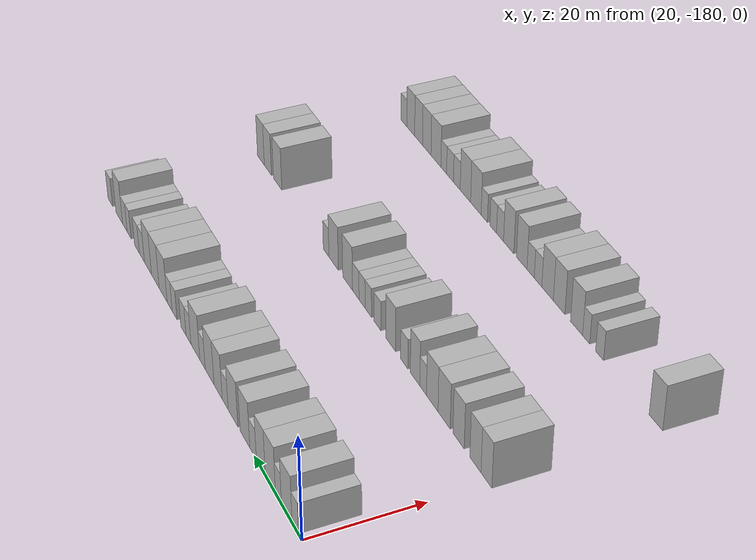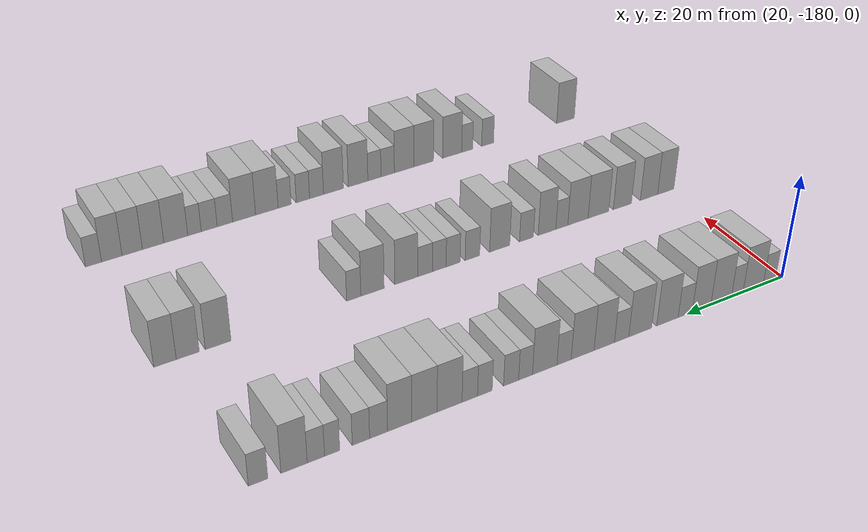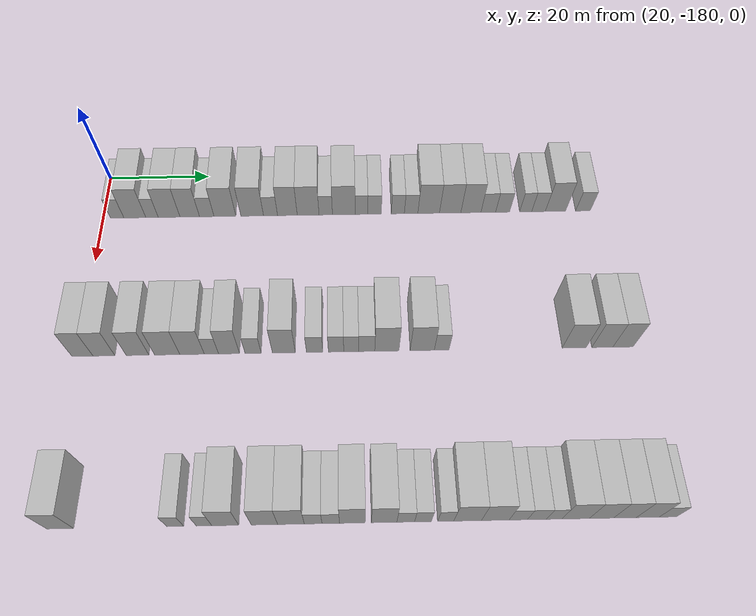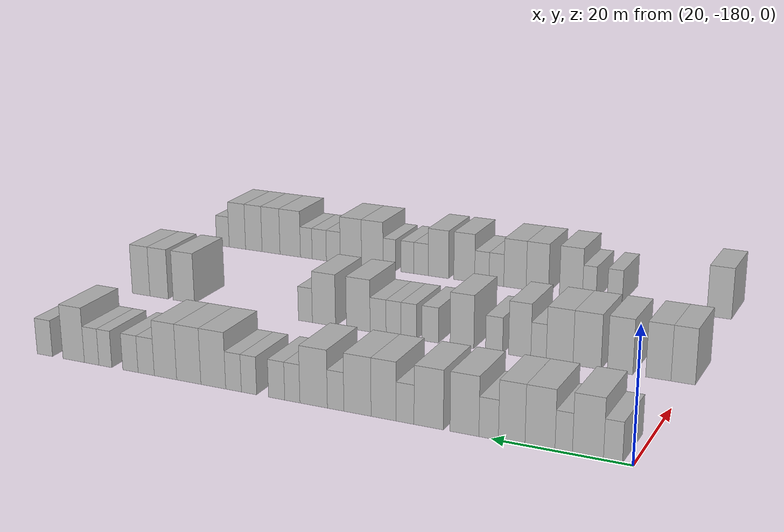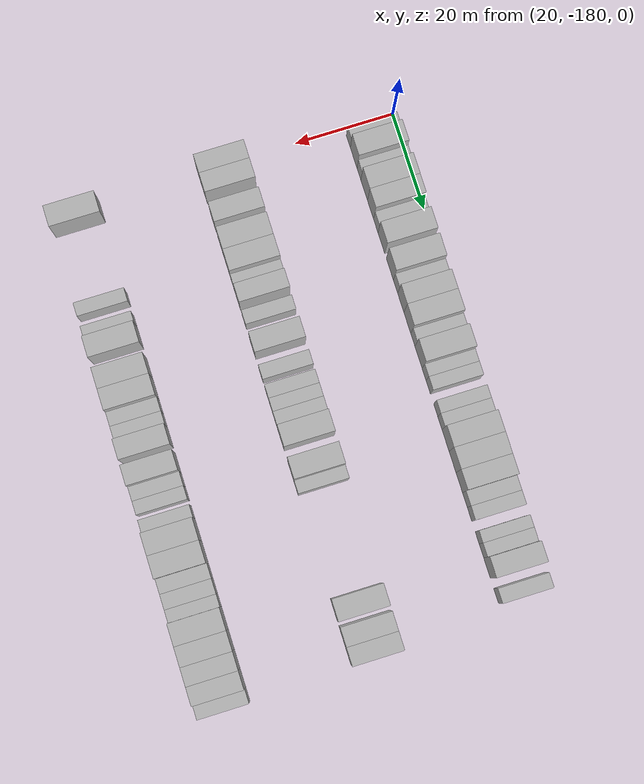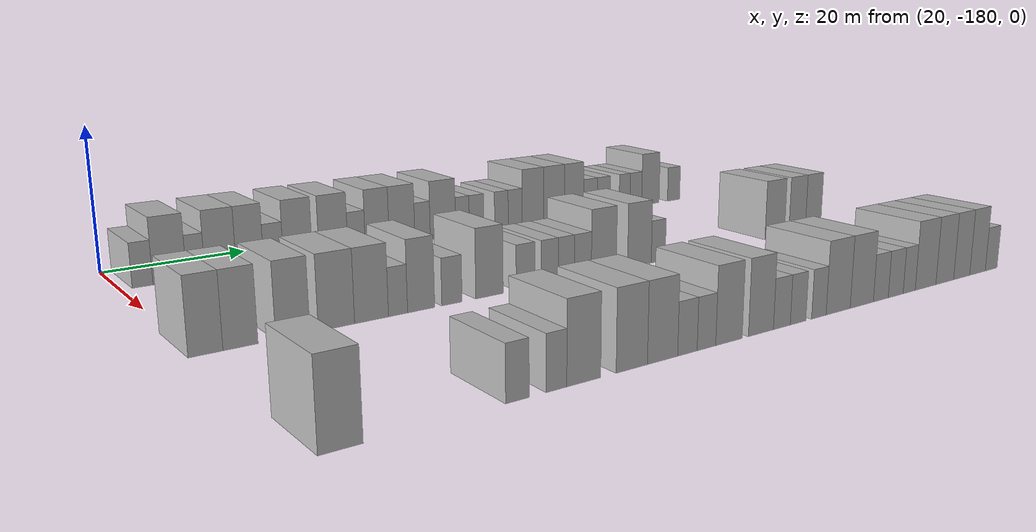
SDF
<sdf version="1.6">
 <world name="default">
  <model name="building_27">
   <static>1</static>
   <pose>25.0000 -177.2383 0 0.000000 0.000000 0.000000</pose>
   <link name="link">
    <pose>0 0 3.00 0 0 0</pose>
    <collision name="collision"><geometry><box><size>10.0000 2.6254 6.0000</size></box></geometry></collision>
    <visual name="visual">
     <cast_shadows>0</cast_shadows>
     <geometry><box><size>10.0000 2.6254 6.0000</size></box></geometry>
     <material>
      <script>
       <uri>model://HANNAS_wall/materials/scripts</uri>
       <uri>model://HANNAS_wall/materials/textures</uri>
       <name>vrc/HANNAS_wall</name>
      </script>
     </material>
    </visual>
   </link>
  </model>
  <model name="building_28">
   <static>1</static>
   <pose>25.0000 -173.7595 0 0.000000 0.000000 0.000000</pose>
   <link name="link">
    <pose>0 0 4.50 0 0 0</pose>
    <collision name="collision"><geometry><box><size>10.0000 4.3323 9.0000</size></box></geometry></collision>
    <visual name="visual">
     <cast_shadows>0</cast_shadows>
     <geometry><box><size>10.0000 4.3323 9.0000</size></box></geometry>
     <material>
      <script>
       <uri>model://HANNAS_wall/materials/scripts</uri>
       <uri>model://HANNAS_wall/materials/textures</uri>
       <name>vrc/HANNAS_wall</name>
      </script>
     </material>
    </visual>
   </link>
  </model>
  <model name="building_29">
   <static>1</static>
   <pose>25.0000 -170.3641 0 0.000000 0.000000 0.000000</pose>
   <link name="link">
    <pose>0 0 3.00 0 0 0</pose>
    <collision name="collision"><geometry><box><size>10.0000 2.4583 6.0000</size></box></geometry></collision>
    <visual name="visual">
     <cast_shadows>0</cast_shadows>
     <geometry><box><size>10.0000 2.4583 6.0000</size></box></geometry>
     <material>
      <script>
       <uri>model://HANNAS_wall/materials/scripts</uri>
       <uri>model://HANNAS_wall/materials/textures</uri>
       <name>vrc/HANNAS_wall</name>
      </script>
     </material>
    </visual>
   </link>
  </model>
  <model name="building_30">
   <static>1</static>
   <pose>25.0000 -166.9870 0 0.000000 0.000000 0.000000</pose>
   <link name="link">
    <pose>0 0 4.50 0 0 0</pose>
    <collision name="collision"><geometry><box><size>10.0000 4.2960 9.0000</size></box></geometry></collision>
    <visual name="visual">
     <cast_shadows>0</cast_shadows>
     <geometry><box><size>10.0000 4.2960 9.0000</size></box></geometry>
     <material>
      <script>
       <uri>model://HANNAS_wall/materials/scripts</uri>
       <uri>model://HANNAS_wall/materials/textures</uri>
       <name>vrc/HANNAS_wall</name>
      </script>
     </material>
    </visual>
   </link>
  </model>
  <model name="building_31">
   <static>1</static>
   <pose>25.0000 -162.9096 0 0.000000 0.000000 0.000000</pose>
   <link name="link">
    <pose>0 0 4.50 0 0 0</pose>
    <collision name="collision"><geometry><box><size>10.0000 3.8586 9.0000</size></box></geometry></collision>
    <visual name="visual">
     <cast_shadows>0</cast_shadows>
     <geometry><box><size>10.0000 3.8586 9.0000</size></box></geometry>
     <material>
      <script>
       <uri>model://HANNAS_wall/materials/scripts</uri>
       <uri>model://HANNAS_wall/materials/textures</uri>
       <name>vrc/HANNAS_wall</name>
      </script>
     </material>
    </visual>
   </link>
  </model>
  <model name="building_32">
   <static>1</static>
   <pose>25.0000 -159.5487 0 0.000000 0.000000 0.000000</pose>
   <link name="link">
    <pose>0 0 3.00 0 0 0</pose>
    <collision name="collision"><geometry><box><size>10.0000 2.8632 6.0000</size></box></geometry></collision>
    <visual name="visual">
     <cast_shadows>0</cast_shadows>
     <geometry><box><size>10.0000 2.8632 6.0000</size></box></geometry>
     <material>
      <script>
       <uri>model://HANNAS_wall/materials/scripts</uri>
       <uri>model://HANNAS_wall/materials/textures</uri>
       <name>vrc/HANNAS_wall</name>
      </script>
     </material>
    </visual>
   </link>
  </model>
  <model name="building_33">
   <static>1</static>
   <pose>25.0000 -155.9598 0 0.000000 0.000000 0.000000</pose>
   <link name="link">
    <pose>0 0 4.50 0 0 0</pose>
    <collision name="collision"><geometry><box><size>10.0000 4.3147 9.0000</size></box></geometry></collision>
    <visual name="visual">
     <cast_shadows>0</cast_shadows>
     <geometry><box><size>10.0000 4.3147 9.0000</size></box></geometry>
     <material>
      <script>
       <uri>model://HANNAS_wall/materials/scripts</uri>
       <uri>model://HANNAS_wall/materials/textures</uri>
       <name>vrc/HANNAS_wall</name>
      </script>
     </material>
    </visual>
   </link>
  </model>
  <model name="building_34">
   <static>1</static>
   <pose>25.0000 -150.5635 0 0.000000 0.000000 0.000000</pose>
   <link name="link">
    <pose>0 0 4.50 0 0 0</pose>
    <collision name="collision"><geometry><box><size>10.0000 4.4778 9.0000</size></box></geometry></collision>
    <visual name="visual">
     <cast_shadows>0</cast_shadows>
     <geometry><box><size>10.0000 4.4778 9.0000</size></box></geometry>
     <material>
      <script>
       <uri>model://HANNAS_wall/materials/scripts</uri>
       <uri>model://HANNAS_wall/materials/textures</uri>
       <name>vrc/HANNAS_wall</name>
      </script>
     </material>
    </visual>
   </link>
  </model>
  <model name="building_35">
   <static>1</static>
   <pose>25.0000 -146.9342 0 0.000000 0.000000 0.000000</pose>
   <link name="link">
    <pose>0 0 3.00 0 0 0</pose>
    <collision name="collision"><geometry><box><size>10.0000 2.7808 6.0000</size></box></geometry></collision>
    <visual name="visual">
     <cast_shadows>0</cast_shadows>
     <geometry><box><size>10.0000 2.7808 6.0000</size></box></geometry>
     <material>
      <script>
       <uri>model://HANNAS_wall/materials/scripts</uri>
       <uri>model://HANNAS_wall/materials/textures</uri>
       <name>vrc/HANNAS_wall</name>
      </script>
     </material>
    </visual>
   </link>
  </model>
  <model name="building_36">
   <static>1</static>
   <pose>25.0000 -143.5945 0 0.000000 0.000000 0.000000</pose>
   <link name="link">
    <pose>0 0 4.50 0 0 0</pose>
    <collision name="collision"><geometry><box><size>10.0000 3.8986 9.0000</size></box></geometry></collision>
    <visual name="visual">
     <cast_shadows>0</cast_shadows>
     <geometry><box><size>10.0000 3.8986 9.0000</size></box></geometry>
     <material>
      <script>
       <uri>model://HANNAS_wall/materials/scripts</uri>
       <uri>model://HANNAS_wall/materials/textures</uri>
       <name>vrc/HANNAS_wall</name>
      </script>
     </material>
    </visual>
   </link>
  </model>
  <model name="building_37">
   <static>1</static>
   <pose>25.0000 -139.4871 0 0.000000 0.000000 0.000000</pose>
   <link name="link">
    <pose>0 0 4.50 0 0 0</pose>
    <collision name="collision"><geometry><box><size>10.0000 4.3162 9.0000</size></box></geometry></collision>
    <visual name="visual">
     <cast_shadows>0</cast_shadows>
     <geometry><box><size>10.0000 4.3162 9.0000</size></box></geometry>
     <material>
      <script>
       <uri>model://HANNAS_wall/materials/scripts</uri>
       <uri>model://HANNAS_wall/materials/textures</uri>
       <name>vrc/HANNAS_wall</name>
      </script>
     </material>
    </visual>
   </link>
  </model>
  <model name="building_38">
   <static>1</static>
   <pose>25.0000 -136.0011 0 0.000000 0.000000 0.000000</pose>
   <link name="link">
    <pose>0 0 3.00 0 0 0</pose>
    <collision name="collision"><geometry><box><size>10.0000 2.6557 6.0000</size></box></geometry></collision>
    <visual name="visual">
     <cast_shadows>0</cast_shadows>
     <geometry><box><size>10.0000 2.6557 6.0000</size></box></geometry>
     <material>
      <script>
       <uri>model://HANNAS_wall/materials/scripts</uri>
       <uri>model://HANNAS_wall/materials/textures</uri>
       <name>vrc/HANNAS_wall</name>
      </script>
     </material>
    </visual>
   </link>
  </model>
  <model name="building_39">
   <static>1</static>
   <pose>25.0000 -132.4320 0 0.000000 0.000000 0.000000</pose>
   <link name="link">
    <pose>0 0 4.50 0 0 0</pose>
    <collision name="collision"><geometry><box><size>10.0000 4.4825 9.0000</size></box></geometry></collision>
    <visual name="visual">
     <cast_shadows>0</cast_shadows>
     <geometry><box><size>10.0000 4.4825 9.0000</size></box></geometry>
     <material>
      <script>
       <uri>model://HANNAS_wall/materials/scripts</uri>
       <uri>model://HANNAS_wall/materials/textures</uri>
       <name>vrc/HANNAS_wall</name>
      </script>
     </material>
    </visual>
   </link>
  </model>
  <model name="building_40">
   <static>1</static>
   <pose>25.0000 -128.9391 0 0.000000 0.000000 0.000000</pose>
   <link name="link">
    <pose>0 0 3.00 0 0 0</pose>
    <collision name="collision"><geometry><box><size>10.0000 2.5035 6.0000</size></box></geometry></collision>
    <visual name="visual">
     <cast_shadows>0</cast_shadows>
     <geometry><box><size>10.0000 2.5035 6.0000</size></box></geometry>
     <material>
      <script>
       <uri>model://HANNAS_wall/materials/scripts</uri>
       <uri>model://HANNAS_wall/materials/textures</uri>
       <name>vrc/HANNAS_wall</name>
      </script>
     </material>
    </visual>
   </link>
  </model>
  <model name="building_41">
   <static>1</static>
   <pose>25.0000 -126.3406 0 0.000000 0.000000 0.000000</pose>
   <link name="link">
    <pose>0 0 3.00 0 0 0</pose>
    <collision name="collision"><geometry><box><size>10.0000 2.6935 6.0000</size></box></geometry></collision>
    <visual name="visual">
     <cast_shadows>0</cast_shadows>
     <geometry><box><size>10.0000 2.6935 6.0000</size></box></geometry>
     <material>
      <script>
       <uri>model://HANNAS_wall/materials/scripts</uri>
       <uri>model://HANNAS_wall/materials/textures</uri>
       <name>vrc/HANNAS_wall</name>
      </script>
     </material>
    </visual>
   </link>
  </model>
  <model name="building_42">
   <static>1</static>
   <pose>25.0000 -121.6999 0 0.000000 0.000000 0.000000</pose>
   <link name="link">
    <pose>0 0 3.00 0 0 0</pose>
    <collision name="collision"><geometry><box><size>10.0000 2.5879 6.0000</size></box></geometry></collision>
    <visual name="visual">
     <cast_shadows>0</cast_shadows>
     <geometry><box><size>10.0000 2.5879 6.0000</size></box></geometry>
     <material>
      <script>
       <uri>model://HANNAS_wall/materials/scripts</uri>
       <uri>model://HANNAS_wall/materials/textures</uri>
       <name>vrc/HANNAS_wall</name>
      </script>
     </material>
    </visual>
   </link>
  </model>
  <model name="building_43">
   <static>1</static>
   <pose>25.0000 -119.0641 0 0.000000 0.000000 0.000000</pose>
   <link name="link">
    <pose>0 0 3.00 0 0 0</pose>
    <collision name="collision"><geometry><box><size>10.0000 2.6836 6.0000</size></box></geometry></collision>
    <visual name="visual">
     <cast_shadows>0</cast_shadows>
     <geometry><box><size>10.0000 2.6836 6.0000</size></box></geometry>
     <material>
      <script>
       <uri>model://HANNAS_wall/materials/scripts</uri>
       <uri>model://HANNAS_wall/materials/textures</uri>
       <name>vrc/HANNAS_wall</name>
      </script>
     </material>
    </visual>
   </link>
  </model>
  <model name="building_44">
   <static>1</static>
   <pose>25.0000 -115.5744 0 0.000000 0.000000 0.000000</pose>
   <link name="link">
    <pose>0 0 4.50 0 0 0</pose>
    <collision name="collision"><geometry><box><size>10.0000 4.2958 9.0000</size></box></geometry></collision>
    <visual name="visual">
     <cast_shadows>0</cast_shadows>
     <geometry><box><size>10.0000 4.2958 9.0000</size></box></geometry>
     <material>
      <script>
       <uri>model://HANNAS_wall/materials/scripts</uri>
       <uri>model://HANNAS_wall/materials/textures</uri>
       <name>vrc/HANNAS_wall</name>
      </script>
     </material>
    </visual>
   </link>
  </model>
  <model name="building_45">
   <static>1</static>
   <pose>25.0000 -111.2972 0 0.000000 0.000000 0.000000</pose>
   <link name="link">
    <pose>0 0 4.50 0 0 0</pose>
    <collision name="collision"><geometry><box><size>10.0000 4.2586 9.0000</size></box></geometry></collision>
    <visual name="visual">
     <cast_shadows>0</cast_shadows>
     <geometry><box><size>10.0000 4.2586 9.0000</size></box></geometry>
     <material>
      <script>
       <uri>model://HANNAS_wall/materials/scripts</uri>
       <uri>model://HANNAS_wall/materials/textures</uri>
       <name>vrc/HANNAS_wall</name>
      </script>
     </material>
    </visual>
   </link>
  </model>
  <model name="building_46">
   <static>1</static>
   <pose>25.0000 -107.1710 0 0.000000 0.000000 0.000000</pose>
   <link name="link">
    <pose>0 0 4.50 0 0 0</pose>
    <collision name="collision"><geometry><box><size>10.0000 3.9936 9.0000</size></box></geometry></collision>
    <visual name="visual">
     <cast_shadows>0</cast_shadows>
     <geometry><box><size>10.0000 3.9936 9.0000</size></box></geometry>
     <material>
      <script>
       <uri>model://HANNAS_wall/materials/scripts</uri>
       <uri>model://HANNAS_wall/materials/textures</uri>
       <name>vrc/HANNAS_wall</name>
      </script>
     </material>
    </visual>
   </link>
  </model>
  <model name="building_47">
   <static>1</static>
   <pose>25.0000 -103.7107 0 0.000000 0.000000 0.000000</pose>
   <link name="link">
    <pose>0 0 3.00 0 0 0</pose>
    <collision name="collision"><geometry><box><size>10.0000 2.9270 6.0000</size></box></geometry></collision>
    <visual name="visual">
     <cast_shadows>0</cast_shadows>
     <geometry><box><size>10.0000 2.9270 6.0000</size></box></geometry>
     <material>
      <script>
       <uri>model://HANNAS_wall/materials/scripts</uri>
       <uri>model://HANNAS_wall/materials/textures</uri>
       <name>vrc/HANNAS_wall</name>
      </script>
     </material>
    </visual>
   </link>
  </model>
  <model name="building_48">
   <static>1</static>
   <pose>25.0000 -100.8520 0 0.000000 0.000000 0.000000</pose>
   <link name="link">
    <pose>0 0 3.00 0 0 0</pose>
    <collision name="collision"><geometry><box><size>10.0000 2.7905 6.0000</size></box></geometry></collision>
    <visual name="visual">
     <cast_shadows>0</cast_shadows>
     <geometry><box><size>10.0000 2.7905 6.0000</size></box></geometry>
     <material>
      <script>
       <uri>model://HANNAS_wall/materials/scripts</uri>
       <uri>model://HANNAS_wall/materials/textures</uri>
       <name>vrc/HANNAS_wall</name>
      </script>
     </material>
    </visual>
   </link>
  </model>
  <model name="building_49">
   <static>1</static>
   <pose>25.0000 -96.2562 0 0.000000 0.000000 0.000000</pose>
   <link name="link">
    <pose>0 0 3.00 0 0 0</pose>
    <collision name="collision"><geometry><box><size>10.0000 2.4011 6.0000</size></box></geometry></collision>
    <visual name="visual">
     <cast_shadows>0</cast_shadows>
     <geometry><box><size>10.0000 2.4011 6.0000</size></box></geometry>
     <material>
      <script>
       <uri>model://HANNAS_wall/materials/scripts</uri>
       <uri>model://HANNAS_wall/materials/textures</uri>
       <name>vrc/HANNAS_wall</name>
      </script>
     </material>
    </visual>
   </link>
  </model>
  <model name="building_50">
   <static>1</static>
   <pose>25.0000 -93.7037 0 0.000000 0.000000 0.000000</pose>
   <link name="link">
    <pose>0 0 3.00 0 0 0</pose>
    <collision name="collision"><geometry><box><size>10.0000 2.7040 6.0000</size></box></geometry></collision>
    <visual name="visual">
     <cast_shadows>0</cast_shadows>
     <geometry><box><size>10.0000 2.7040 6.0000</size></box></geometry>
     <material>
      <script>
       <uri>model://HANNAS_wall/materials/scripts</uri>
       <uri>model://HANNAS_wall/materials/textures</uri>
       <name>vrc/HANNAS_wall</name>
      </script>
     </material>
    </visual>
   </link>
  </model>
  <model name="building_51">
   <static>1</static>
   <pose>25.0000 -90.3258 0 0.000000 0.000000 0.000000</pose>
   <link name="link">
    <pose>0 0 4.50 0 0 0</pose>
    <collision name="collision"><geometry><box><size>10.0000 4.0517 9.0000</size></box></geometry></collision>
    <visual name="visual">
     <cast_shadows>0</cast_shadows>
     <geometry><box><size>10.0000 4.0517 9.0000</size></box></geometry>
     <material>
      <script>
       <uri>model://HANNAS_wall/materials/scripts</uri>
       <uri>model://HANNAS_wall/materials/textures</uri>
       <name>vrc/HANNAS_wall</name>
      </script>
     </material>
    </visual>
   </link>
  </model>
  <model name="building_52">
   <static>1</static>
   <pose>25.0000 -84.8335 0 0.000000 0.000000 0.000000</pose>
   <link name="link">
    <pose>0 0 3.00 0 0 0</pose>
    <collision name="collision"><geometry><box><size>10.0000 2.9329 6.0000</size></box></geometry></collision>
    <visual name="visual">
     <cast_shadows>0</cast_shadows>
     <geometry><box><size>10.0000 2.9329 6.0000</size></box></geometry>
     <material>
      <script>
       <uri>model://HANNAS_wall/materials/scripts</uri>
       <uri>model://HANNAS_wall/materials/textures</uri>
       <name>vrc/HANNAS_wall</name>
      </script>
     </material>
    </visual>
   </link>
  </model>
  <model name="building_162">
   <static>1</static>
   <pose>55.0000 -179.2265 0 0.000000 0.000000 0.000000</pose>
   <link name="link">
    <pose>0 0 4.50 0 0 0</pose>
    <collision name="collision"><geometry><box><size>10.0000 3.7395 9.0000</size></box></geometry></collision>
    <visual name="visual">
     <cast_shadows>0</cast_shadows>
     <geometry><box><size>10.0000 3.7395 9.0000</size></box></geometry>
     <material>
      <script>
       <uri>model://HANNAS_wall/materials/scripts</uri>
       <uri>model://HANNAS_wall/materials/textures</uri>
       <name>vrc/HANNAS_wall</name>
      </script>
     </material>
    </visual>
   </link>
  </model>
  <model name="building_163">
   <static>1</static>
   <pose>55.0000 -175.4091 0 0.000000 0.000000 0.000000</pose>
   <link name="link">
    <pose>0 0 4.50 0 0 0</pose>
    <collision name="collision"><geometry><box><size>10.0000 3.8953 9.0000</size></box></geometry></collision>
    <visual name="visual">
     <cast_shadows>0</cast_shadows>
     <geometry><box><size>10.0000 3.8953 9.0000</size></box></geometry>
     <material>
      <script>
       <uri>model://HANNAS_wall/materials/scripts</uri>
       <uri>model://HANNAS_wall/materials/textures</uri>
       <name>vrc/HANNAS_wall</name>
      </script>
     </material>
    </visual>
   </link>
  </model>
  <model name="building_164">
   <static>1</static>
   <pose>55.0000 -169.4445 0 0.000000 0.000000 0.000000</pose>
   <link name="link">
    <pose>0 0 4.50 0 0 0</pose>
    <collision name="collision"><geometry><box><size>10.0000 4.0338 9.0000</size></box></geometry></collision>
    <visual name="visual">
     <cast_shadows>0</cast_shadows>
     <geometry><box><size>10.0000 4.0338 9.0000</size></box></geometry>
     <material>
      <script>
       <uri>model://HANNAS_wall/materials/scripts</uri>
       <uri>model://HANNAS_wall/materials/textures</uri>
       <name>vrc/HANNAS_wall</name>
      </script>
     </material>
    </visual>
   </link>
  </model>
  <model name="building_165">
   <static>1</static>
   <pose>55.0000 -164.1778 0 0.000000 0.000000 0.000000</pose>
   <link name="link">
    <pose>0 0 4.50 0 0 0</pose>
    <collision name="collision"><geometry><box><size>10.0000 4.4997 9.0000</size></box></geometry></collision>
    <visual name="visual">
     <cast_shadows>0</cast_shadows>
     <geometry><box><size>10.0000 4.4997 9.0000</size></box></geometry>
     <material>
      <script>
       <uri>model://HANNAS_wall/materials/scripts</uri>
       <uri>model://HANNAS_wall/materials/textures</uri>
       <name>vrc/HANNAS_wall</name>
      </script>
     </material>
    </visual>
   </link>
  </model>
  <model name="building_166">
   <static>1</static>
   <pose>55.0000 -159.7492 0 0.000000 0.000000 0.000000</pose>
   <link name="link">
    <pose>0 0 4.50 0 0 0</pose>
    <collision name="collision"><geometry><box><size>10.0000 4.3576 9.0000</size></box></geometry></collision>
    <visual name="visual">
     <cast_shadows>0</cast_shadows>
     <geometry><box><size>10.0000 4.3576 9.0000</size></box></geometry>
     <material>
      <script>
       <uri>model://HANNAS_wall/materials/scripts</uri>
       <uri>model://HANNAS_wall/materials/textures</uri>
       <name>vrc/HANNAS_wall</name>
      </script>
     </material>
    </visual>
   </link>
  </model>
  <model name="building_167">
   <static>1</static>
   <pose>55.0000 -156.2999 0 0.000000 0.000000 0.000000</pose>
   <link name="link">
    <pose>0 0 3.00 0 0 0</pose>
    <collision name="collision"><geometry><box><size>10.0000 2.5411 6.0000</size></box></geometry></collision>
    <visual name="visual">
     <cast_shadows>0</cast_shadows>
     <geometry><box><size>10.0000 2.5411 6.0000</size></box></geometry>
     <material>
      <script>
       <uri>model://HANNAS_wall/materials/scripts</uri>
       <uri>model://HANNAS_wall/materials/textures</uri>
       <name>vrc/HANNAS_wall</name>
      </script>
     </material>
    </visual>
   </link>
  </model>
  <model name="building_168">
   <static>1</static>
   <pose>55.0000 -153.1738 0 0.000000 0.000000 0.000000</pose>
   <link name="link">
    <pose>0 0 4.50 0 0 0</pose>
    <collision name="collision"><geometry><box><size>10.0000 3.7110 9.0000</size></box></geometry></collision>
    <visual name="visual">
     <cast_shadows>0</cast_shadows>
     <geometry><box><size>10.0000 3.7110 9.0000</size></box></geometry>
     <material>
      <script>
       <uri>model://HANNAS_wall/materials/scripts</uri>
       <uri>model://HANNAS_wall/materials/textures</uri>
       <name>vrc/HANNAS_wall</name>
      </script>
     </material>
    </visual>
   </link>
  </model>
  <model name="building_169">
   <static>1</static>
   <pose>55.0000 -148.8820 0 0.000000 0.000000 0.000000</pose>
   <link name="link">
    <pose>0 0 3.00 0 0 0</pose>
    <collision name="collision"><geometry><box><size>10.0000 2.8727 6.0000</size></box></geometry></collision>
    <visual name="visual">
     <cast_shadows>0</cast_shadows>
     <geometry><box><size>10.0000 2.8727 6.0000</size></box></geometry>
     <material>
      <script>
       <uri>model://HANNAS_wall/materials/scripts</uri>
       <uri>model://HANNAS_wall/materials/textures</uri>
       <name>vrc/HANNAS_wall</name>
      </script>
     </material>
    </visual>
   </link>
  </model>
  <model name="building_170">
   <static>1</static>
   <pose>55.0000 -143.4073 0 0.000000 0.000000 0.000000</pose>
   <link name="link">
    <pose>0 0 4.50 0 0 0</pose>
    <collision name="collision"><geometry><box><size>10.0000 4.0767 9.0000</size></box></geometry></collision>
    <visual name="visual">
     <cast_shadows>0</cast_shadows>
     <geometry><box><size>10.0000 4.0767 9.0000</size></box></geometry>
     <material>
      <script>
       <uri>model://HANNAS_wall/materials/scripts</uri>
       <uri>model://HANNAS_wall/materials/textures</uri>
       <name>vrc/HANNAS_wall</name>
      </script>
     </material>
    </visual>
   </link>
  </model>
  <model name="building_171">
   <static>1</static>
   <pose>55.0000 -137.9137 0 0.000000 0.000000 0.000000</pose>
   <link name="link">
    <pose>0 0 3.00 0 0 0</pose>
    <collision name="collision"><geometry><box><size>10.0000 2.9103 6.0000</size></box></geometry></collision>
    <visual name="visual">
     <cast_shadows>0</cast_shadows>
     <geometry><box><size>10.0000 2.9103 6.0000</size></box></geometry>
     <material>
      <script>
       <uri>model://HANNAS_wall/materials/scripts</uri>
       <uri>model://HANNAS_wall/materials/textures</uri>
       <name>vrc/HANNAS_wall</name>
      </script>
     </material>
    </visual>
   </link>
  </model>
  <model name="building_172">
   <static>1</static>
   <pose>55.0000 -134.0903 0 0.000000 0.000000 0.000000</pose>
   <link name="link">
    <pose>0 0 3.00 0 0 0</pose>
    <collision name="collision"><geometry><box><size>10.0000 2.7366 6.0000</size></box></geometry></collision>
    <visual name="visual">
     <cast_shadows>0</cast_shadows>
     <geometry><box><size>10.0000 2.7366 6.0000</size></box></geometry>
     <material>
      <script>
       <uri>model://HANNAS_wall/materials/scripts</uri>
       <uri>model://HANNAS_wall/materials/textures</uri>
       <name>vrc/HANNAS_wall</name>
      </script>
     </material>
    </visual>
   </link>
  </model>
  <model name="building_173">
   <static>1</static>
   <pose>55.0000 -131.3996 0 0.000000 0.000000 0.000000</pose>
   <link name="link">
    <pose>0 0 3.00 0 0 0</pose>
    <collision name="collision"><geometry><box><size>10.0000 2.6448 6.0000</size></box></geometry></collision>
    <visual name="visual">
     <cast_shadows>0</cast_shadows>
     <geometry><box><size>10.0000 2.6448 6.0000</size></box></geometry>
     <material>
      <script>
       <uri>model://HANNAS_wall/materials/scripts</uri>
       <uri>model://HANNAS_wall/materials/textures</uri>
       <name>vrc/HANNAS_wall</name>
      </script>
     </material>
    </visual>
   </link>
  </model>
  <model name="building_174">
   <static>1</static>
   <pose>55.0000 -128.6348 0 0.000000 0.000000 0.000000</pose>
   <link name="link">
    <pose>0 0 3.00 0 0 0</pose>
    <collision name="collision"><geometry><box><size>10.0000 2.8849 6.0000</size></box></geometry></collision>
    <visual name="visual">
     <cast_shadows>0</cast_shadows>
     <geometry><box><size>10.0000 2.8849 6.0000</size></box></geometry>
     <material>
      <script>
       <uri>model://HANNAS_wall/materials/scripts</uri>
       <uri>model://HANNAS_wall/materials/textures</uri>
       <name>vrc/HANNAS_wall</name>
      </script>
     </material>
    </visual>
   </link>
  </model>
  <model name="building_175">
   <static>1</static>
   <pose>55.0000 -125.0281 0 0.000000 0.000000 0.000000</pose>
   <link name="link">
    <pose>0 0 4.50 0 0 0</pose>
    <collision name="collision"><geometry><box><size>10.0000 4.3284 9.0000</size></box></geometry></collision>
    <visual name="visual">
     <cast_shadows>0</cast_shadows>
     <geometry><box><size>10.0000 4.3284 9.0000</size></box></geometry>
     <material>
      <script>
       <uri>model://HANNAS_wall/materials/scripts</uri>
       <uri>model://HANNAS_wall/materials/textures</uri>
       <name>vrc/HANNAS_wall</name>
      </script>
     </material>
    </visual>
   </link>
  </model>
  <model name="building_176">
   <static>1</static>
   <pose>55.0000 -118.7055 0 0.000000 0.000000 0.000000</pose>
   <link name="link">
    <pose>0 0 4.50 0 0 0</pose>
    <collision name="collision"><geometry><box><size>10.0000 4.3169 9.0000</size></box></geometry></collision>
    <visual name="visual">
     <cast_shadows>0</cast_shadows>
     <geometry><box><size>10.0000 4.3169 9.0000</size></box></geometry>
     <material>
      <script>
       <uri>model://HANNAS_wall/materials/scripts</uri>
       <uri>model://HANNAS_wall/materials/textures</uri>
       <name>vrc/HANNAS_wall</name>
      </script>
     </material>
    </visual>
   </link>
  </model>
  <model name="building_177">
   <static>1</static>
   <pose>55.0000 -115.2351 0 0.000000 0.000000 0.000000</pose>
   <link name="link">
    <pose>0 0 3.00 0 0 0</pose>
    <collision name="collision"><geometry><box><size>10.0000 2.6239 6.0000</size></box></geometry></collision>
    <visual name="visual">
     <cast_shadows>0</cast_shadows>
     <geometry><box><size>10.0000 2.6239 6.0000</size></box></geometry>
     <material>
      <script>
       <uri>model://HANNAS_wall/materials/scripts</uri>
       <uri>model://HANNAS_wall/materials/textures</uri>
       <name>vrc/HANNAS_wall</name>
      </script>
     </material>
    </visual>
   </link>
  </model>
  <model name="building_178">
   <static>1</static>
   <pose>55.0000 -91.4495 0 0.000000 0.000000 0.000000</pose>
   <link name="link">
    <pose>0 0 4.50 0 0 0</pose>
    <collision name="collision"><geometry><box><size>10.0000 4.3157 9.0000</size></box></geometry></collision>
    <visual name="visual">
     <cast_shadows>0</cast_shadows>
     <geometry><box><size>10.0000 4.3157 9.0000</size></box></geometry>
     <material>
      <script>
       <uri>model://HANNAS_wall/materials/scripts</uri>
       <uri>model://HANNAS_wall/materials/textures</uri>
       <name>vrc/HANNAS_wall</name>
      </script>
     </material>
    </visual>
   </link>
  </model>
  <model name="building_179">
   <static>1</static>
   <pose>55.0000 -86.3975 0 0.000000 0.000000 0.000000</pose>
   <link name="link">
    <pose>0 0 4.50 0 0 0</pose>
    <collision name="collision"><geometry><box><size>10.0000 3.7885 9.0000</size></box></geometry></collision>
    <visual name="visual">
     <cast_shadows>0</cast_shadows>
     <geometry><box><size>10.0000 3.7885 9.0000</size></box></geometry>
     <material>
      <script>
       <uri>model://HANNAS_wall/materials/scripts</uri>
       <uri>model://HANNAS_wall/materials/textures</uri>
       <name>vrc/HANNAS_wall</name>
      </script>
     </material>
    </visual>
   </link>
  </model>
  <model name="building_180">
   <static>1</static>
   <pose>55.0000 -82.6812 0 0.000000 0.000000 0.000000</pose>
   <link name="link">
    <pose>0 0 4.50 0 0 0</pose>
    <collision name="collision"><geometry><box><size>10.0000 3.6441 9.0000</size></box></geometry></collision>
    <visual name="visual">
     <cast_shadows>0</cast_shadows>
     <geometry><box><size>10.0000 3.6441 9.0000</size></box></geometry>
     <material>
      <script>
       <uri>model://HANNAS_wall/materials/scripts</uri>
       <uri>model://HANNAS_wall/materials/textures</uri>
       <name>vrc/HANNAS_wall</name>
      </script>
     </material>
    </visual>
   </link>
  </model>
  <model name="building_289">
   <static>1</static>
   <pose>85.0000 -177.8838 0 0.000000 0.000000 0.000000</pose>
   <link name="link">
    <pose>0 0 4.50 0 0 0</pose>
    <collision name="collision"><geometry><box><size>10.0000 4.2153 9.0000</size></box></geometry></collision>
    <visual name="visual">
     <cast_shadows>0</cast_shadows>
     <geometry><box><size>10.0000 4.2153 9.0000</size></box></geometry>
     <material>
      <script>
       <uri>model://HANNAS_wall/materials/scripts</uri>
       <uri>model://HANNAS_wall/materials/textures</uri>
       <name>vrc/HANNAS_wall</name>
      </script>
     </material>
    </visual>
   </link>
  </model>
  <model name="building_290">
   <static>1</static>
   <pose>85.0000 -159.7288 0 0.000000 0.000000 0.000000</pose>
   <link name="link">
    <pose>0 0 3.00 0 0 0</pose>
    <collision name="collision"><geometry><box><size>10.0000 2.6982 6.0000</size></box></geometry></collision>
    <visual name="visual">
     <cast_shadows>0</cast_shadows>
     <geometry><box><size>10.0000 2.6982 6.0000</size></box></geometry>
     <material>
      <script>
       <uri>model://HANNAS_wall/materials/scripts</uri>
       <uri>model://HANNAS_wall/materials/textures</uri>
       <name>vrc/HANNAS_wall</name>
      </script>
     </material>
    </visual>
   </link>
  </model>
  <model name="building_291">
   <static>1</static>
   <pose>85.0000 -155.1455 0 0.000000 0.000000 0.000000</pose>
   <link name="link">
    <pose>0 0 3.00 0 0 0</pose>
    <collision name="collision"><geometry><box><size>10.0000 2.4683 6.0000</size></box></geometry></collision>
    <visual name="visual">
     <cast_shadows>0</cast_shadows>
     <geometry><box><size>10.0000 2.4683 6.0000</size></box></geometry>
     <material>
      <script>
       <uri>model://HANNAS_wall/materials/scripts</uri>
       <uri>model://HANNAS_wall/materials/textures</uri>
       <name>vrc/HANNAS_wall</name>
      </script>
     </material>
    </visual>
   </link>
  </model>
  <model name="building_292">
   <static>1</static>
   <pose>85.0000 -151.7928 0 0.000000 0.000000 0.000000</pose>
   <link name="link">
    <pose>0 0 4.50 0 0 0</pose>
    <collision name="collision"><geometry><box><size>10.0000 4.2371 9.0000</size></box></geometry></collision>
    <visual name="visual">
     <cast_shadows>0</cast_shadows>
     <geometry><box><size>10.0000 4.2371 9.0000</size></box></geometry>
     <material>
      <script>
       <uri>model://HANNAS_wall/materials/scripts</uri>
       <uri>model://HANNAS_wall/materials/textures</uri>
       <name>vrc/HANNAS_wall</name>
      </script>
     </material>
    </visual>
   </link>
  </model>
  <model name="building_293">
   <static>1</static>
   <pose>85.0000 -145.5840 0 0.000000 0.000000 0.000000</pose>
   <link name="link">
    <pose>0 0 4.50 0 0 0</pose>
    <collision name="collision"><geometry><box><size>10.0000 4.1805 9.0000</size></box></geometry></collision>
    <visual name="visual">
     <cast_shadows>0</cast_shadows>
     <geometry><box><size>10.0000 4.1805 9.0000</size></box></geometry>
     <material>
      <script>
       <uri>model://HANNAS_wall/materials/scripts</uri>
       <uri>model://HANNAS_wall/materials/textures</uri>
       <name>vrc/HANNAS_wall</name>
      </script>
     </material>
    </visual>
   </link>
  </model>
  <model name="building_294">
   <static>1</static>
   <pose>85.0000 -141.3857 0 0.000000 0.000000 0.000000</pose>
   <link name="link">
    <pose>0 0 4.50 0 0 0</pose>
    <collision name="collision"><geometry><box><size>10.0000 4.2161 9.0000</size></box></geometry></collision>
    <visual name="visual">
     <cast_shadows>0</cast_shadows>
     <geometry><box><size>10.0000 4.2161 9.0000</size></box></geometry>
     <material>
      <script>
       <uri>model://HANNAS_wall/materials/scripts</uri>
       <uri>model://HANNAS_wall/materials/textures</uri>
       <name>vrc/HANNAS_wall</name>
      </script>
     </material>
    </visual>
   </link>
  </model>
  <model name="building_295">
   <static>1</static>
   <pose>85.0000 -137.8687 0 0.000000 0.000000 0.000000</pose>
   <link name="link">
    <pose>0 0 3.00 0 0 0</pose>
    <collision name="collision"><geometry><box><size>10.0000 2.8180 6.0000</size></box></geometry></collision>
    <visual name="visual">
     <cast_shadows>0</cast_shadows>
     <geometry><box><size>10.0000 2.8180 6.0000</size></box></geometry>
     <material>
      <script>
       <uri>model://HANNAS_wall/materials/scripts</uri>
       <uri>model://HANNAS_wall/materials/textures</uri>
       <name>vrc/HANNAS_wall</name>
      </script>
     </material>
    </visual>
   </link>
  </model>
  <model name="building_296">
   <static>1</static>
   <pose>85.0000 -135.0764 0 0.000000 0.000000 0.000000</pose>
   <link name="link">
    <pose>0 0 3.00 0 0 0</pose>
    <collision name="collision"><geometry><box><size>10.0000 2.7666 6.0000</size></box></geometry></collision>
    <visual name="visual">
     <cast_shadows>0</cast_shadows>
     <geometry><box><size>10.0000 2.7666 6.0000</size></box></geometry>
     <material>
      <script>
       <uri>model://HANNAS_wall/materials/scripts</uri>
       <uri>model://HANNAS_wall/materials/textures</uri>
       <name>vrc/HANNAS_wall</name>
      </script>
     </material>
    </visual>
   </link>
  </model>
  <model name="building_297">
   <static>1</static>
   <pose>85.0000 -131.6656 0 0.000000 0.000000 0.000000</pose>
   <link name="link">
    <pose>0 0 4.50 0 0 0</pose>
    <collision name="collision"><geometry><box><size>10.0000 4.0550 9.0000</size></box></geometry></collision>
    <visual name="visual">
     <cast_shadows>0</cast_shadows>
     <geometry><box><size>10.0000 4.0550 9.0000</size></box></geometry>
     <material>
      <script>
       <uri>model://HANNAS_wall/materials/scripts</uri>
       <uri>model://HANNAS_wall/materials/textures</uri>
       <name>vrc/HANNAS_wall</name>
      </script>
     </material>
    </visual>
   </link>
  </model>
  <model name="building_298">
   <static>1</static>
   <pose>85.0000 -126.6162 0 0.000000 0.000000 0.000000</pose>
   <link name="link">
    <pose>0 0 4.50 0 0 0</pose>
    <collision name="collision"><geometry><box><size>10.0000 4.0438 9.0000</size></box></geometry></collision>
    <visual name="visual">
     <cast_shadows>0</cast_shadows>
     <geometry><box><size>10.0000 4.0438 9.0000</size></box></geometry>
     <material>
      <script>
       <uri>model://HANNAS_wall/materials/scripts</uri>
       <uri>model://HANNAS_wall/materials/textures</uri>
       <name>vrc/HANNAS_wall</name>
      </script>
     </material>
    </visual>
   </link>
  </model>
  <model name="building_299">
   <static>1</static>
   <pose>85.0000 -123.1902 0 0.000000 0.000000 0.000000</pose>
   <link name="link">
    <pose>0 0 3.00 0 0 0</pose>
    <collision name="collision"><geometry><box><size>10.0000 2.8081 6.0000</size></box></geometry></collision>
    <visual name="visual">
     <cast_shadows>0</cast_shadows>
     <geometry><box><size>10.0000 2.8081 6.0000</size></box></geometry>
     <material>
      <script>
       <uri>model://HANNAS_wall/materials/scripts</uri>
       <uri>model://HANNAS_wall/materials/textures</uri>
       <name>vrc/HANNAS_wall</name>
      </script>
     </material>
    </visual>
   </link>
  </model>
  <model name="building_300">
   <static>1</static>
   <pose>85.0000 -120.4503 0 0.000000 0.000000 0.000000</pose>
   <link name="link">
    <pose>0 0 3.00 0 0 0</pose>
    <collision name="collision"><geometry><box><size>10.0000 2.6716 6.0000</size></box></geometry></collision>
    <visual name="visual">
     <cast_shadows>0</cast_shadows>
     <geometry><box><size>10.0000 2.6716 6.0000</size></box></geometry>
     <material>
      <script>
       <uri>model://HANNAS_wall/materials/scripts</uri>
       <uri>model://HANNAS_wall/materials/textures</uri>
       <name>vrc/HANNAS_wall</name>
      </script>
     </material>
    </visual>
   </link>
  </model>
  <model name="building_301">
   <static>1</static>
   <pose>85.0000 -116.8258 0 0.000000 0.000000 0.000000</pose>
   <link name="link">
    <pose>0 0 3.00 0 0 0</pose>
    <collision name="collision"><geometry><box><size>10.0000 2.5774 6.0000</size></box></geometry></collision>
    <visual name="visual">
     <cast_shadows>0</cast_shadows>
     <geometry><box><size>10.0000 2.5774 6.0000</size></box></geometry>
     <material>
      <script>
       <uri>model://HANNAS_wall/materials/scripts</uri>
       <uri>model://HANNAS_wall/materials/textures</uri>
       <name>vrc/HANNAS_wall</name>
      </script>
     </material>
    </visual>
   </link>
  </model>
  <model name="building_302">
   <static>1</static>
   <pose>85.0000 -113.3368 0 0.000000 0.000000 0.000000</pose>
   <link name="link">
    <pose>0 0 4.50 0 0 0</pose>
    <collision name="collision"><geometry><box><size>10.0000 4.4007 9.0000</size></box></geometry></collision>
    <visual name="visual">
     <cast_shadows>0</cast_shadows>
     <geometry><box><size>10.0000 4.4007 9.0000</size></box></geometry>
     <material>
      <script>
       <uri>model://HANNAS_wall/materials/scripts</uri>
       <uri>model://HANNAS_wall/materials/textures</uri>
       <name>vrc/HANNAS_wall</name>
      </script>
     </material>
    </visual>
   </link>
  </model>
  <model name="building_303">
   <static>1</static>
   <pose>85.0000 -108.9303 0 0.000000 0.000000 0.000000</pose>
   <link name="link">
    <pose>0 0 4.50 0 0 0</pose>
    <collision name="collision"><geometry><box><size>10.0000 4.4121 9.0000</size></box></geometry></collision>
    <visual name="visual">
     <cast_shadows>0</cast_shadows>
     <geometry><box><size>10.0000 4.4121 9.0000</size></box></geometry>
     <material>
      <script>
       <uri>model://HANNAS_wall/materials/scripts</uri>
       <uri>model://HANNAS_wall/materials/textures</uri>
       <name>vrc/HANNAS_wall</name>
      </script>
     </material>
    </visual>
   </link>
  </model>
  <model name="building_304">
   <static>1</static>
   <pose>85.0000 -105.2621 0 0.000000 0.000000 0.000000</pose>
   <link name="link">
    <pose>0 0 3.00 0 0 0</pose>
    <collision name="collision"><geometry><box><size>10.0000 2.9243 6.0000</size></box></geometry></collision>
    <visual name="visual">
     <cast_shadows>0</cast_shadows>
     <geometry><box><size>10.0000 2.9243 6.0000</size></box></geometry>
     <material>
      <script>
       <uri>model://HANNAS_wall/materials/scripts</uri>
       <uri>model://HANNAS_wall/materials/textures</uri>
       <name>vrc/HANNAS_wall</name>
      </script>
     </material>
    </visual>
   </link>
  </model>
  <model name="building_305">
   <static>1</static>
   <pose>85.0000 -102.3004 0 0.000000 0.000000 0.000000</pose>
   <link name="link">
    <pose>0 0 3.00 0 0 0</pose>
    <collision name="collision"><geometry><box><size>10.0000 2.9991 6.0000</size></box></geometry></collision>
    <visual name="visual">
     <cast_shadows>0</cast_shadows>
     <geometry><box><size>10.0000 2.9991 6.0000</size></box></geometry>
     <material>
      <script>
       <uri>model://HANNAS_wall/materials/scripts</uri>
       <uri>model://HANNAS_wall/materials/textures</uri>
       <name>vrc/HANNAS_wall</name>
      </script>
     </material>
    </visual>
   </link>
  </model>
  <model name="building_306">
   <static>1</static>
   <pose>85.0000 -99.5558 0 0.000000 0.000000 0.000000</pose>
   <link name="link">
    <pose>0 0 3.00 0 0 0</pose>
    <collision name="collision"><geometry><box><size>10.0000 2.4900 6.0000</size></box></geometry></collision>
    <visual name="visual">
     <cast_shadows>0</cast_shadows>
     <geometry><box><size>10.0000 2.4900 6.0000</size></box></geometry>
     <material>
      <script>
       <uri>model://HANNAS_wall/materials/scripts</uri>
       <uri>model://HANNAS_wall/materials/textures</uri>
       <name>vrc/HANNAS_wall</name>
      </script>
     </material>
    </visual>
   </link>
  </model>
  <model name="building_307">
   <static>1</static>
   <pose>85.0000 -96.1126 0 0.000000 0.000000 0.000000</pose>
   <link name="link">
    <pose>0 0 4.50 0 0 0</pose>
    <collision name="collision"><geometry><box><size>10.0000 4.3963 9.0000</size></box></geometry></collision>
    <visual name="visual">
     <cast_shadows>0</cast_shadows>
     <geometry><box><size>10.0000 4.3963 9.0000</size></box></geometry>
     <material>
      <script>
       <uri>model://HANNAS_wall/materials/scripts</uri>
       <uri>model://HANNAS_wall/materials/textures</uri>
       <name>vrc/HANNAS_wall</name>
      </script>
     </material>
    </visual>
   </link>
  </model>
  <model name="building_308">
   <static>1</static>
   <pose>85.0000 -91.9661 0 0.000000 0.000000 0.000000</pose>
   <link name="link">
    <pose>0 0 4.50 0 0 0</pose>
    <collision name="collision"><geometry><box><size>10.0000 3.8967 9.0000</size></box></geometry></collision>
    <visual name="visual">
     <cast_shadows>0</cast_shadows>
     <geometry><box><size>10.0000 3.8967 9.0000</size></box></geometry>
     <material>
      <script>
       <uri>model://HANNAS_wall/materials/scripts</uri>
       <uri>model://HANNAS_wall/materials/textures</uri>
       <name>vrc/HANNAS_wall</name>
      </script>
     </material>
    </visual>
   </link>
  </model>
  <model name="building_309">
   <static>1</static>
   <pose>85.0000 -88.2014 0 0.000000 0.000000 0.000000</pose>
   <link name="link">
    <pose>0 0 4.50 0 0 0</pose>
    <collision name="collision"><geometry><box><size>10.0000 3.6328 9.0000</size></box></geometry></collision>
    <visual name="visual">
     <cast_shadows>0</cast_shadows>
     <geometry><box><size>10.0000 3.6328 9.0000</size></box></geometry>
     <material>
      <script>
       <uri>model://HANNAS_wall/materials/scripts</uri>
       <uri>model://HANNAS_wall/materials/textures</uri>
       <name>vrc/HANNAS_wall</name>
      </script>
     </material>
    </visual>
   </link>
  </model>
  <model name="building_310">
   <static>1</static>
   <pose>85.0000 -84.5686 0 0.000000 0.000000 0.000000</pose>
   <link name="link">
    <pose>0 0 4.50 0 0 0</pose>
    <collision name="collision"><geometry><box><size>10.0000 3.6328 9.0000</size></box></geometry></collision>
    <visual name="visual">
     <cast_shadows>0</cast_shadows>
     <geometry><box><size>10.0000 3.6328 9.0000</size></box></geometry>
     <material>
      <script>
       <uri>model://HANNAS_wall/materials/scripts</uri>
       <uri>model://HANNAS_wall/materials/textures</uri>
       <name>vrc/HANNAS_wall</name>
      </script>
     </material>
    </visual>
   </link>
  </model>
  <model name="building_311">
   <static>1</static>
   <pose>85.0000 -81.3463 0 0.000000 0.000000 0.000000</pose>
   <link name="link">
    <pose>0 0 3.00 0 0 0</pose>
    <collision name="collision"><geometry><box><size>10.0000 2.8118 6.0000</size></box></geometry></collision>
    <visual name="visual">
     <cast_shadows>0</cast_shadows>
     <geometry><box><size>10.0000 2.8118 6.0000</size></box></geometry>
     <material>
      <script>
       <uri>model://HANNAS_wall/materials/scripts</uri>
       <uri>model://HANNAS_wall/materials/textures</uri>
       <name>vrc/HANNAS_wall</name>
      </script>
     </material>
    </visual>
   </link>
  </model>
 </world>
</sdf>
